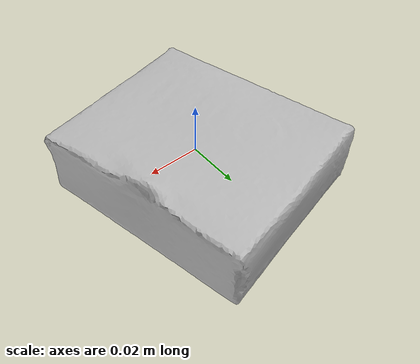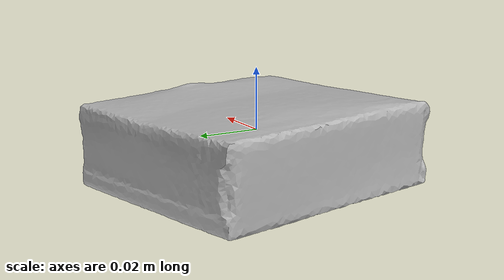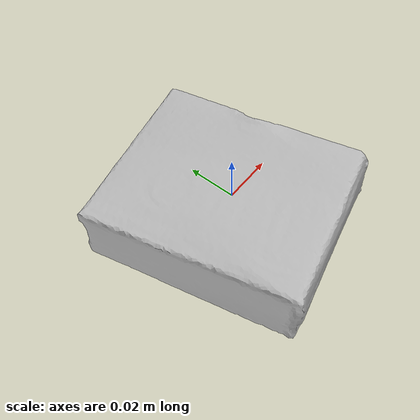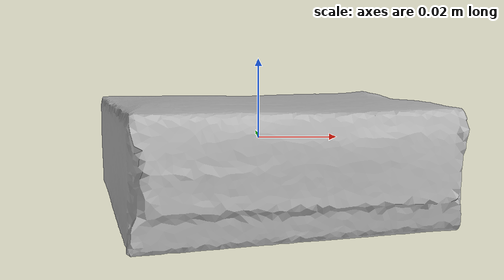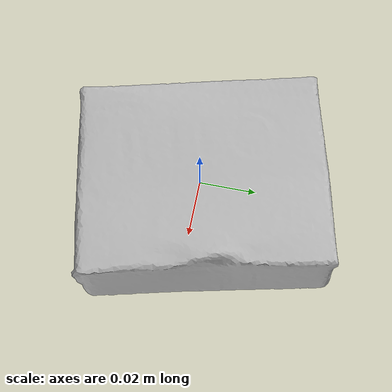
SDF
<?xml version='1.0'?>
<sdf version="1.4">
  <model name="gelatin_box">
    <static>false</static>
    <link name="link">
      <inertial>
        <pose>0 0 0 -0.3812962283595558 -1.5653302217381688 -0.961483610330872</pose>
        <mass>0.0001730558194301085</mass>
        <inertia>
          <ixx>1.8088084641267357e-07</ixx>
          <ixy>2.0679515313825692e-25</ixy>
          <ixz>-1.6543612251060553e-24</ixz>
          <iyy>1.1880213011661255e-07</iyy>
          <iyz>-1.5799634375902996e-23</iyz>
          <izz>8.422039755656733e-08</izz>
        </inertia>
      </inertial>
      <collision name="collision">
        <geometry>
          <mesh>
            <!-- Use a downsampled mesh for collisions -->
            <uri>model://009_gelatin_box/google_16k/textured_simple.obj</uri>
	        </mesh>
        </geometry>
        <surface>
      </surface>
      </collision>
      <visual name="visual">
        <geometry>
          <mesh>
            <uri>model://009_gelatin_box/google_16k/textured_simple.obj</uri>
	        </mesh>
        </geometry>
      </visual>
    </link>
  </model>
</sdf>
